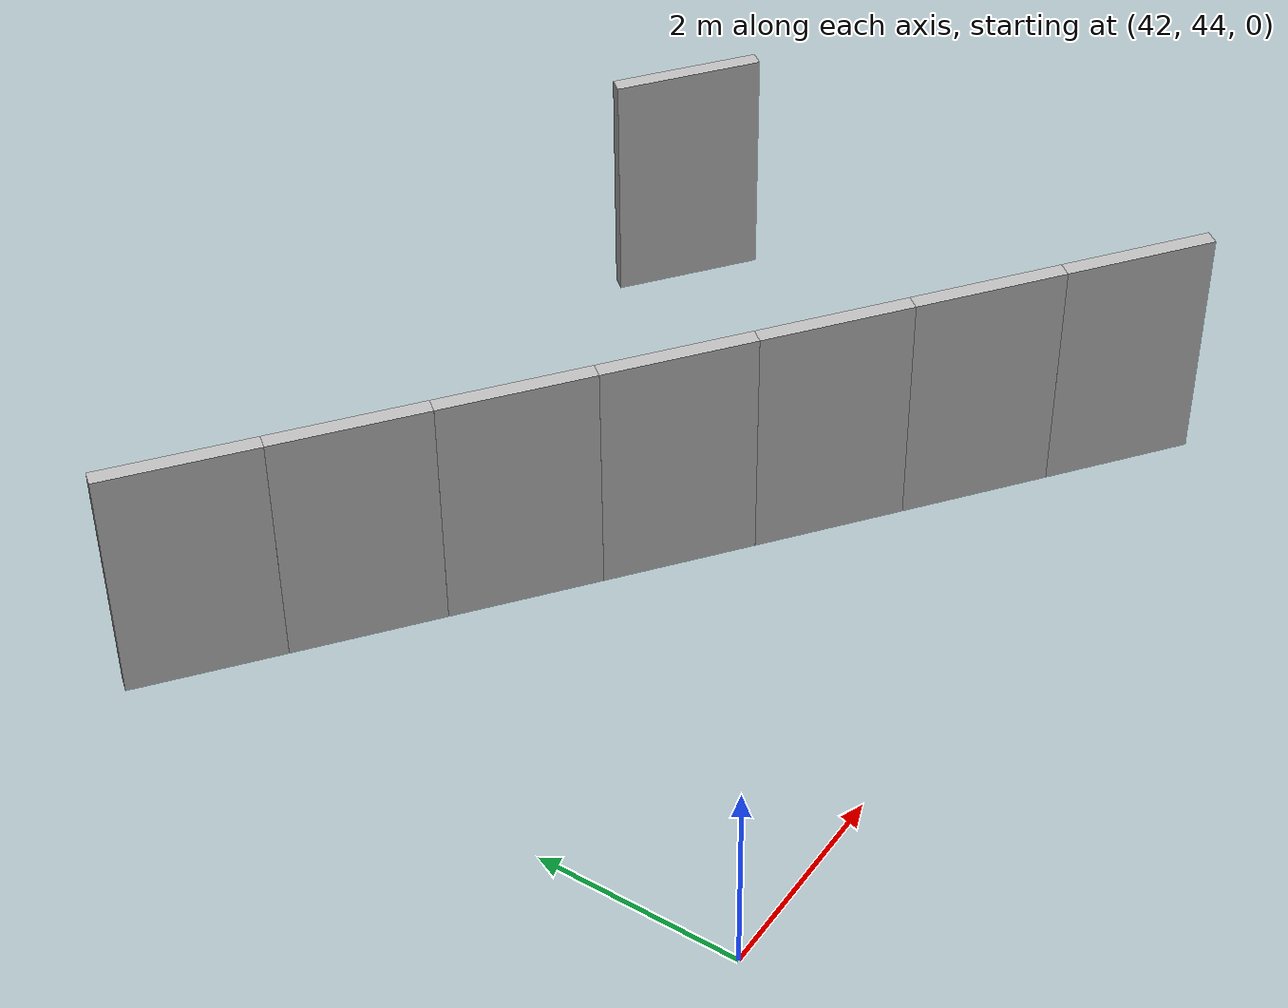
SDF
<?xml version="1.0" ?>
<sdf version="1.6">
  <model name="sps_1007">
    <pose frame="">0 0 0 0 -0 0</pose>
    <static>1</static>
    <self_collide>0</self_collide>
    <allow_auto_disable>0</allow_auto_disable>
    <link name="Wall8584">
      <kinematic>0</kinematic>
      <gravity>1</gravity>
      <self_collide>0</self_collide>
      <collision name="collision">
        <geometry>
          <box>
            <size>1.4989 0.15 2.5</size>
          </box>
        </geometry>
        <pose frame="">0 0 0 0 -0 0</pose>
      </collision>
      <visual name="visual">
        <geometry>
          <box>
            <size>1.4989 0.15 2.5</size>
          </box>
        </geometry>
        <pose frame="">0 0 0 0 -0 0</pose>
        <cast_shadows>1</cast_shadows>
        <transparency>0.0</transparency>
      </visual>
      <pose frame="">42.1988 49.8224 1.25 0 0 -0.672229</pose>
    </link>
    <link name="Wall8585">
      <kinematic>0</kinematic>
      <gravity>1</gravity>
      <self_collide>0</self_collide>
      <collision name="collision">
        <geometry>
          <box>
            <size>1.49893 0.15 2.5</size>
          </box>
        </geometry>
        <pose frame="">0 0 0 0 -0 0</pose>
      </collision>
      <visual name="visual">
        <geometry>
          <box>
            <size>1.49893 0.15 2.5</size>
          </box>
        </geometry>
        <pose frame="">0 0 0 0 -0 0</pose>
        <cast_shadows>1</cast_shadows>
        <transparency>0.0</transparency>
      </visual>
      <pose frame="">43.3725 48.89 1.25 0 0 -0.670493</pose>
    </link>
    <link name="Wall8586">
      <kinematic>0</kinematic>
      <gravity>1</gravity>
      <self_collide>0</self_collide>
      <collision name="collision">
        <geometry>
          <box>
            <size>1.49896 0.15 2.5</size>
          </box>
        </geometry>
        <pose frame="">0 0 0 0 -0 0</pose>
      </collision>
      <visual name="visual">
        <geometry>
          <box>
            <size>1.49896 0.15 2.5</size>
          </box>
        </geometry>
        <pose frame="">0 0 0 0 -0 0</pose>
        <cast_shadows>1</cast_shadows>
        <transparency>0.0</transparency>
      </visual>
      <pose frame="">44.5476 47.9594 1.25 0 0 -0.669075</pose>
    </link>
    <link name="Wall8587">
      <kinematic>0</kinematic>
      <gravity>1</gravity>
      <self_collide>0</self_collide>
      <collision name="collision">
        <geometry>
          <box>
            <size>1.49874 0.15 2.5</size>
          </box>
        </geometry>
        <pose frame="">0 0 0 0 -0 0</pose>
      </collision>
      <visual name="visual">
        <geometry>
          <box>
            <size>1.49874 0.15 2.5</size>
          </box>
        </geometry>
        <pose frame="">0 0 0 0 -0 0</pose>
        <cast_shadows>1</cast_shadows>
        <transparency>0.0</transparency>
      </visual>
      <pose frame="">45.7241 47.0307 1.25 0 0 -0.667376</pose>
    </link>
    <link name="Wall8588">
      <kinematic>0</kinematic>
      <gravity>1</gravity>
      <self_collide>0</self_collide>
      <collision name="collision">
        <geometry>
          <box>
            <size>1.49906 0.15 2.5</size>
          </box>
        </geometry>
        <pose frame="">0 0 0 0 -0 0</pose>
      </collision>
      <visual name="visual">
        <geometry>
          <box>
            <size>1.49906 0.15 2.5</size>
          </box>
        </geometry>
        <pose frame="">0 0 0 0 -0 0</pose>
        <cast_shadows>1</cast_shadows>
        <transparency>0.0</transparency>
      </visual>
      <pose frame="">46.9021 46.1039 1.25 0 0 -0.665864</pose>
    </link>
    <link name="Wall8589">
      <kinematic>0</kinematic>
      <gravity>1</gravity>
      <self_collide>0</self_collide>
      <collision name="collision">
        <geometry>
          <box>
            <size>1.49913 0.15 2.5</size>
          </box>
        </geometry>
        <pose frame="">0 0 0 0 -0 0</pose>
      </collision>
      <visual name="visual">
        <geometry>
          <box>
            <size>1.49913 0.15 2.5</size>
          </box>
        </geometry>
        <pose frame="">0 0 0 0 -0 0</pose>
        <cast_shadows>1</cast_shadows>
        <transparency>0.0</transparency>
      </visual>
      <pose frame="">48.0817 45.1788 1.25 0 0 -0.664275</pose>
    </link>
    <link name="Wall8590">
      <kinematic>0</kinematic>
      <gravity>1</gravity>
      <self_collide>0</self_collide>
      <collision name="collision">
        <geometry>
          <box>
            <size>1.4989 0.15 2.5</size>
          </box>
        </geometry>
        <pose frame="">0 0 0 0 -0 0</pose>
      </collision>
      <visual name="visual">
        <geometry>
          <box>
            <size>1.4989 0.15 2.5</size>
          </box>
        </geometry>
        <pose frame="">0 0 0 0 -0 0</pose>
        <cast_shadows>1</cast_shadows>
        <transparency>0.0</transparency>
      </visual>
      <pose frame="">49.2627 44.2556 1.25 0 0 -0.66269</pose>
    </link>
    <link name="Wall9669">
      <kinematic>0</kinematic>
      <gravity>1</gravity>
      <self_collide>0</self_collide>
      <collision name="collision">
        <geometry>
          <box>
            <size>1.49233 0.15 2.5</size>
          </box>
        </geometry>
        <pose frame="">0 0 0 0 -0 0</pose>
      </collision>
      <visual name="visual">
        <geometry>
          <box>
            <size>1.49233 0.15 2.5</size>
          </box>
        </geometry>
        <pose frame="">0 0 0 0 -0 0</pose>
        <cast_shadows>1</cast_shadows>
        <transparency>0.0</transparency>
      </visual>
      <pose frame="">49.4594 49.3598 1.25 0 0 -0.665818</pose>
    </link>
  </model>
</sdf>
